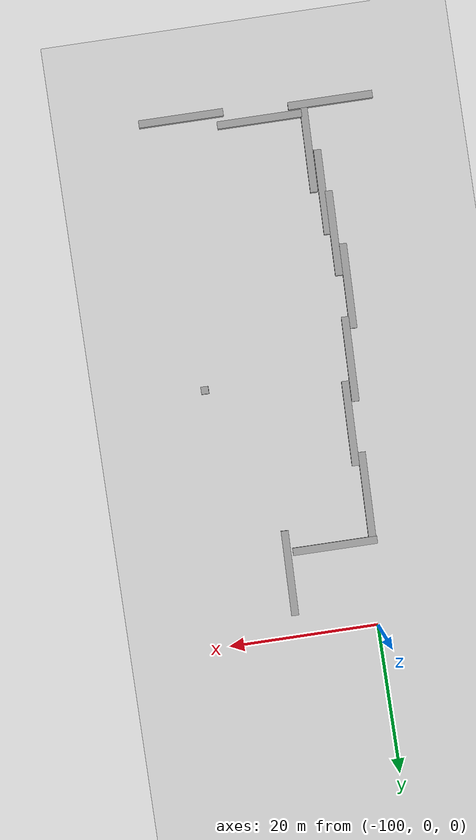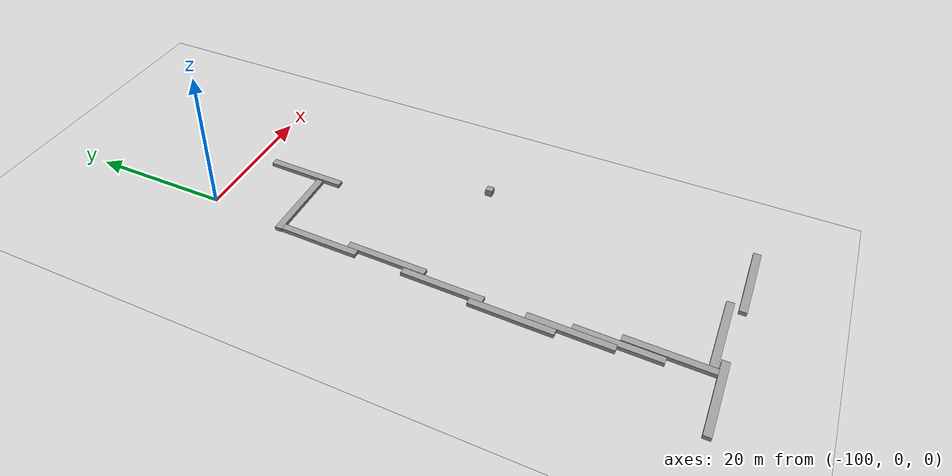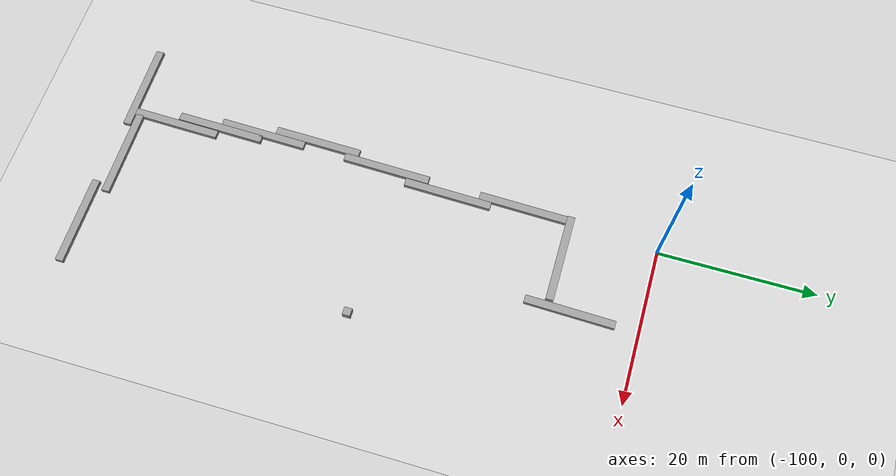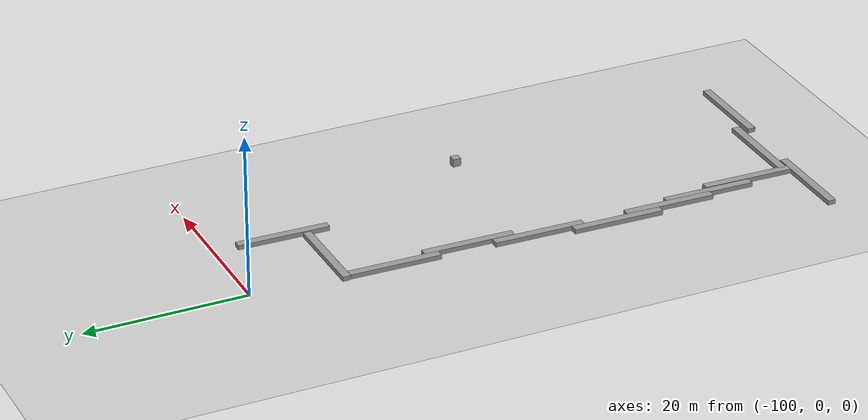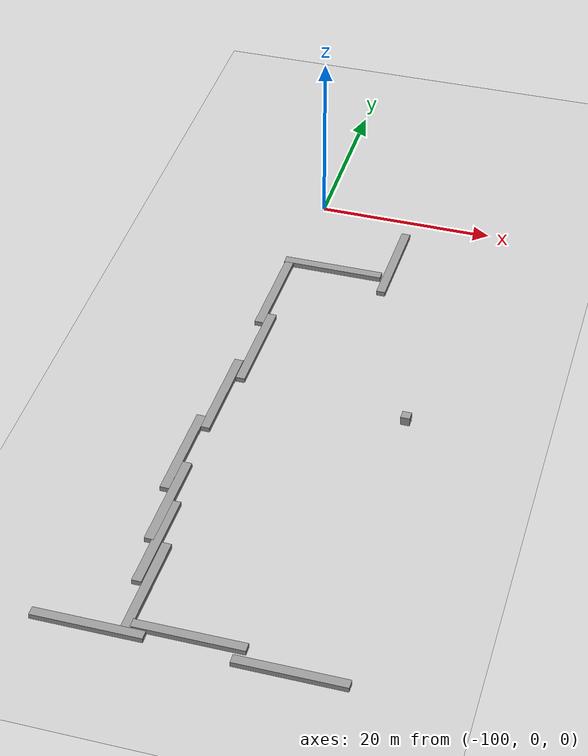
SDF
<sdf version="1.6">
 <world name="default">
  <model name="ground_plane">
   <static>1</static>
   <link name="link">
    <collision name="collision">
     <geometry><plane><normal>0 0 1</normal><size>100 100</size></plane></geometry>
     <surface><friction><ode><mu>100</mu><mu2>50</mu2></ode></friction></surface>
    </collision>
    <visual name="visual">
     <cast_shadows>0</cast_shadows>
     <geometry><plane><normal>0 0 1</normal><size>100 100</size></plane></geometry>
     <material>
      <script><uri>file://media/materials/scripts/gazebo.material</uri><name>Gazebo/Grey</name></script>
     </material>
    </visual>
   </link>
  </model>
  <model name="unit_box_0_clone_14_clone_0_clone_11">
   <pose>-81.7303 -34.3592 0.51 0 0 -0.008529</pose>
   <link name="link">
    <inertial>
     <mass>1</mass>
     <inertia>
      <ixx>0.166667</ixx>
      <ixy>0</ixy>
      <ixz>0</ixz>
      <iyy>0.166667</iyy>
      <iyz>0</iyz>
      <izz>0.166667</izz>
     </inertia>
    </inertial>
    <collision name="collision"><geometry><box><size>1 1 1</size></box></geometry></collision>
    <visual name="visual">
     <geometry><box><size>1 1 1</size></box></geometry>
     <material>
      <script><name>Gazebo/Grey</name><uri>file://media/materials/scripts/gazebo.material</uri></script>
     </material>
    </visual>
   </link>
  </model>
  <model name="unit_box_0_static">
   <link name="link">
    <inertial>
     <mass>11.3696</mass>
     <inertia><ixx>1.89495</ixx><ixy>0</ixy><ixz>0</ixz><iyy>123.426</iyy><iyz>0</iyz><izz>123.426</izz></inertia>
    </inertial>
    <kinematic>1</kinematic>
    <visual name="visual">
     <geometry><box><size>11.3696 1 1</size></box></geometry>
     <material>
      <script><name>Gazebo/Grey</name><uri>file://media/materials/scripts/gazebo.material</uri></script>
      <ambient>0.3 0.3 0.3 1</ambient>
      <diffuse>0.7 0.7 0.7 1</diffuse>
      <specular>0.01 0.01 0.01 1</specular>
      <emissive>0 0 0 1</emissive>
     </material>
    </visual>
    <collision name="collision">
     <geometry><box><size>11.3696 1 1</size></box></geometry>
     <surface>
      <friction>
       <ode><mu>1</mu><mu2>1</mu2><fdir1>0 0 0</fdir1><slip1>0</slip1><slip2>0</slip2></ode>
       <torsional>
        <coefficient>1</coefficient>
        <patch_radius>0</patch_radius>
        <surface_radius>0</surface_radius>
        <use_patch_radius>1</use_patch_radius>
        <ode><slip>0</slip></ode>
       </torsional>
      </friction>
      <bounce><restitution_coefficient>0</restitution_coefficient><threshold>1e+06</threshold></bounce>
      <contact>
       <collide_without_contact>0</collide_without_contact>
       <collide_without_contact_bitmask>1</collide_without_contact_bitmask>
       <collide_bitmask>1</collide_bitmask>
       <ode>
        <soft_cfm>0</soft_cfm>
        <soft_erp>0.2</soft_erp>
        <kp>1e+13</kp>
        <kd>1</kd>
        <max_vel>0.01</max_vel>
        <min_depth>0</min_depth>
       </ode>
       <bullet>
        <split_impulse>1</split_impulse>
        <split_impulse_penetration_threshold>-0.01</split_impulse_penetration_threshold>
        <soft_cfm>0</soft_cfm>
        <soft_erp>0.2</soft_erp>
        <kp>1e+13</kp>
        <kd>1</kd>
       </bullet>
      </contact>
     </surface>
    </collision>
   </link>
   <static>1</static>
   <pose>-83.8691 -70.7361 0 0 -0 0</pose>
  </model>
  <model name="unit_box_0_static_clone_29">
   <link name="link">
    <inertial>
     <mass>11.3696</mass>
     <inertia><ixx>1.89495</ixx><ixy>0</ixy><ixz>0</ixz><iyy>123.426</iyy><iyz>0</iyz><izz>123.426</izz></inertia>
    </inertial>
    <kinematic>1</kinematic>
    <visual name="visual">
     <geometry><box><size>11.3696 1 1</size></box></geometry>
     <material>
      <script><name>Gazebo/Grey</name><uri>file://media/materials/scripts/gazebo.material</uri></script>
      <ambient>0.3 0.3 0.3 1</ambient>
      <diffuse>0.7 0.7 0.7 1</diffuse>
      <specular>0.01 0.01 0.01 1</specular>
      <emissive>0 0 0 1</emissive>
     </material>
    </visual>
    <collision name="collision">
     <geometry><box><size>11.3696 1 1</size></box></geometry>
     <surface>
      <friction>
       <ode><mu>1</mu><mu2>1</mu2><fdir1>0 0 0</fdir1><slip1>0</slip1><slip2>0</slip2></ode>
       <torsional>
        <coefficient>1</coefficient>
        <patch_radius>0</patch_radius>
        <surface_radius>0</surface_radius>
        <use_patch_radius>1</use_patch_radius>
        <ode><slip>0</slip></ode>
       </torsional>
      </friction>
      <bounce><restitution_coefficient>0</restitution_coefficient><threshold>1e+06</threshold></bounce>
      <contact>
       <collide_without_contact>0</collide_without_contact>
       <collide_without_contact_bitmask>1</collide_without_contact_bitmask>
       <collide_bitmask>1</collide_bitmask>
       <ode>
        <soft_cfm>0</soft_cfm>
        <soft_erp>0.2</soft_erp>
        <kp>1e+13</kp>
        <kd>1</kd>
        <max_vel>0.01</max_vel>
        <min_depth>0</min_depth>
       </ode>
       <bullet>
        <split_impulse>1</split_impulse>
        <split_impulse_penetration_threshold>-0.01</split_impulse_penetration_threshold>
        <soft_cfm>0</soft_cfm>
        <soft_erp>0.2</soft_erp>
        <kp>1e+13</kp>
        <kd>1</kd>
       </bullet>
      </contact>
     </surface>
    </collision>
   </link>
   <static>1</static>
   <pose>-95.8668 -11.3355 0 0 -0 0</pose>
  </model>
  <model name="unit_box_0_static_clone_33">
   <link name="link">
    <inertial>
     <mass>11.3696</mass>
     <inertia><ixx>1.89495</ixx><ixy>0</ixy><ixz>0</ixz><iyy>123.426</iyy><iyz>0</iyz><izz>123.426</izz></inertia>
    </inertial>
    <kinematic>1</kinematic>
    <visual name="visual">
     <geometry><box><size>11.3696 1 1</size></box></geometry>
     <material>
      <script><name>Gazebo/Grey</name><uri>file://media/materials/scripts/gazebo.material</uri></script>
      <ambient>0.3 0.3 0.3 1</ambient>
      <diffuse>0.7 0.7 0.7 1</diffuse>
      <specular>0.01 0.01 0.01 1</specular>
      <emissive>0 0 0 1</emissive>
     </material>
    </visual>
    <collision name="collision">
     <geometry><box><size>11.3696 1 1</size></box></geometry>
     <surface>
      <friction>
       <ode><mu>1</mu><mu2>1</mu2><fdir1>0 0 0</fdir1><slip1>0</slip1><slip2>0</slip2></ode>
       <torsional>
        <coefficient>1</coefficient>
        <patch_radius>0</patch_radius>
        <surface_radius>0</surface_radius>
        <use_patch_radius>1</use_patch_radius>
        <ode><slip>0</slip></ode>
       </torsional>
      </friction>
      <bounce><restitution_coefficient>0</restitution_coefficient><threshold>1e+06</threshold></bounce>
      <contact>
       <collide_without_contact>0</collide_without_contact>
       <collide_without_contact_bitmask>1</collide_without_contact_bitmask>
       <collide_bitmask>1</collide_bitmask>
       <ode>
        <soft_cfm>0</soft_cfm>
        <soft_erp>0.2</soft_erp>
        <kp>1e+13</kp>
        <kd>1</kd>
        <max_vel>0.01</max_vel>
        <min_depth>0</min_depth>
       </ode>
       <bullet>
        <split_impulse>1</split_impulse>
        <split_impulse_penetration_threshold>-0.01</split_impulse_penetration_threshold>
        <soft_cfm>0</soft_cfm>
        <soft_erp>0.2</soft_erp>
        <kp>1e+13</kp>
        <kd>1</kd>
       </bullet>
      </contact>
     </surface>
    </collision>
   </link>
   <static>1</static>
   <pose>-94.1893 -69.076 0 0 -0 0</pose>
  </model>
  <model name="unit_box_0_static_clone_34">
   <link name="link">
    <inertial>
     <mass>11.3696</mass>
     <inertia><ixx>1.89495</ixx><ixy>0</ixy><ixz>0</ixz><iyy>123.426</iyy><iyz>0</iyz><izz>123.426</izz></inertia>
    </inertial>
    <kinematic>1</kinematic>
    <visual name="visual">
     <geometry><box><size>11.3696 1 1</size></box></geometry>
     <material>
      <script><name>Gazebo/Grey</name><uri>file://media/materials/scripts/gazebo.material</uri></script>
      <ambient>0.3 0.3 0.3 1</ambient>
      <diffuse>0.7 0.7 0.7 1</diffuse>
      <specular>0.01 0.01 0.01 1</specular>
      <emissive>0 0 0 1</emissive>
     </material>
    </visual>
    <collision name="collision">
     <geometry><box><size>11.3696 1 1</size></box></geometry>
     <surface>
      <friction>
       <ode><mu>1</mu><mu2>1</mu2><fdir1>0 0 0</fdir1><slip1>0</slip1><slip2>0</slip2></ode>
       <torsional>
        <coefficient>1</coefficient>
        <patch_radius>0</patch_radius>
        <surface_radius>0</surface_radius>
        <use_patch_radius>1</use_patch_radius>
        <ode><slip>0</slip></ode>
       </torsional>
      </friction>
      <bounce><restitution_coefficient>0</restitution_coefficient><threshold>1e+06</threshold></bounce>
      <contact>
       <collide_without_contact>0</collide_without_contact>
       <collide_without_contact_bitmask>1</collide_without_contact_bitmask>
       <collide_bitmask>1</collide_bitmask>
       <ode>
        <soft_cfm>0</soft_cfm>
        <soft_erp>0.2</soft_erp>
        <kp>1e+13</kp>
        <kd>1</kd>
        <max_vel>0.01</max_vel>
        <min_depth>0</min_depth>
       </ode>
       <bullet>
        <split_impulse>1</split_impulse>
        <split_impulse_penetration_threshold>-0.01</split_impulse_penetration_threshold>
        <soft_cfm>0</soft_cfm>
        <soft_erp>0.2</soft_erp>
        <kp>1e+13</kp>
        <kd>1</kd>
       </bullet>
      </contact>
     </surface>
    </collision>
   </link>
   <static>1</static>
   <pose>-103.896 -70.2421 0 0 -0 0</pose>
  </model>
  <model name="unit_box_0_static_clone_35">
   <link name="link">
    <inertial>
     <mass>11.3696</mass>
     <inertia><ixx>1.89495</ixx><ixy>0</ixy><ixz>0</ixz><iyy>123.426</iyy><iyz>0</iyz><izz>123.426</izz></inertia>
    </inertial>
    <kinematic>1</kinematic>
    <visual name="visual">
     <geometry><box><size>11.3696 1 1</size></box></geometry>
     <material>
      <script><name>Gazebo/Grey</name><uri>file://media/materials/scripts/gazebo.material</uri></script>
      <ambient>0.3 0.3 0.3 1</ambient>
      <diffuse>0.7 0.7 0.7 1</diffuse>
      <specular>0.01 0.01 0.01 1</specular>
      <emissive>0 0 0 1</emissive>
     </material>
    </visual>
    <collision name="collision">
     <geometry><box><size>11.3696 1 1</size></box></geometry>
     <surface>
      <friction>
       <ode><mu>1</mu><mu2>1</mu2><fdir1>0 0 0</fdir1><slip1>0</slip1><slip2>0</slip2></ode>
       <torsional>
        <coefficient>1</coefficient>
        <patch_radius>0</patch_radius>
        <surface_radius>0</surface_radius>
        <use_patch_radius>1</use_patch_radius>
        <ode><slip>0</slip></ode>
       </torsional>
      </friction>
      <bounce><restitution_coefficient>0</restitution_coefficient><threshold>1e+06</threshold></bounce>
      <contact>
       <collide_without_contact>0</collide_without_contact>
       <collide_without_contact_bitmask>1</collide_without_contact_bitmask>
       <collide_bitmask>1</collide_bitmask>
       <ode>
        <soft_cfm>0</soft_cfm>
        <soft_erp>0.2</soft_erp>
        <kp>1e+13</kp>
        <kd>1</kd>
        <max_vel>0.01</max_vel>
        <min_depth>0</min_depth>
       </ode>
       <bullet>
        <split_impulse>1</split_impulse>
        <split_impulse_penetration_threshold>-0.01</split_impulse_penetration_threshold>
        <soft_cfm>0</soft_cfm>
        <soft_erp>0.2</soft_erp>
        <kp>1e+13</kp>
        <kd>1</kd>
       </bullet>
      </contact>
     </surface>
    </collision>
   </link>
   <static>1</static>
   <pose>-101.072 -17.5094 0 0 0 -1.5917</pose>
  </model>
  <model name="unit_box_0_static_clone_35_clone">
   <link name="link">
    <inertial>
     <mass>11.3696</mass>
     <inertia><ixx>1.89495</ixx><ixy>0</ixy><ixz>0</ixz><iyy>123.426</iyy><iyz>0</iyz><izz>123.426</izz></inertia>
    </inertial>
    <kinematic>1</kinematic>
    <visual name="visual">
     <geometry><box><size>11.3696 1 1</size></box></geometry>
     <material>
      <script><name>Gazebo/Grey</name><uri>file://media/materials/scripts/gazebo.material</uri></script>
      <ambient>0.3 0.3 0.3 1</ambient>
      <diffuse>0.7 0.7 0.7 1</diffuse>
      <specular>0.01 0.01 0.01 1</specular>
      <emissive>0 0 0 1</emissive>
     </material>
    </visual>
    <collision name="collision">
     <geometry><box><size>11.3696 1 1</size></box></geometry>
     <surface>
      <friction>
       <ode><mu>1</mu><mu2>1</mu2><fdir1>0 0 0</fdir1><slip1>0</slip1><slip2>0</slip2></ode>
       <torsional>
        <coefficient>1</coefficient>
        <patch_radius>0</patch_radius>
        <surface_radius>0</surface_radius>
        <use_patch_radius>1</use_patch_radius>
        <ode><slip>0</slip></ode>
       </torsional>
      </friction>
      <bounce><restitution_coefficient>0</restitution_coefficient><threshold>1e+06</threshold></bounce>
      <contact>
       <collide_without_contact>0</collide_without_contact>
       <collide_without_contact_bitmask>1</collide_without_contact_bitmask>
       <collide_bitmask>1</collide_bitmask>
       <ode>
        <soft_cfm>0</soft_cfm>
        <soft_erp>0.2</soft_erp>
        <kp>1e+13</kp>
        <kd>1</kd>
        <max_vel>0.01</max_vel>
        <min_depth>0</min_depth>
       </ode>
       <bullet>
        <split_impulse>1</split_impulse>
        <split_impulse_penetration_threshold>-0.01</split_impulse_penetration_threshold>
        <soft_cfm>0</soft_cfm>
        <soft_erp>0.2</soft_erp>
        <kp>1e+13</kp>
        <kd>1</kd>
       </bullet>
      </contact>
     </surface>
    </collision>
   </link>
   <static>1</static>
   <pose>-100.283 -27.1807 0 0 0 -1.5917</pose>
  </model>
  <model name="unit_box_0_static_clone_35_clone_0">
   <link name="link">
    <inertial>
     <mass>11.3696</mass>
     <inertia><ixx>1.89495</ixx><ixy>0</ixy><ixz>0</ixz><iyy>123.426</iyy><iyz>0</iyz><izz>123.426</izz></inertia>
    </inertial>
    <kinematic>1</kinematic>
    <visual name="visual">
     <geometry><box><size>11.3696 1 1</size></box></geometry>
     <material>
      <script><name>Gazebo/Grey</name><uri>file://media/materials/scripts/gazebo.material</uri></script>
      <ambient>0.3 0.3 0.3 1</ambient>
      <diffuse>0.7 0.7 0.7 1</diffuse>
      <specular>0.01 0.01 0.01 1</specular>
      <emissive>0 0 0 1</emissive>
     </material>
    </visual>
    <collision name="collision">
     <geometry><box><size>11.3696 1 1</size></box></geometry>
     <surface>
      <friction>
       <ode><mu>1</mu><mu2>1</mu2><fdir1>0 0 0</fdir1><slip1>0</slip1><slip2>0</slip2></ode>
       <torsional>
        <coefficient>1</coefficient>
        <patch_radius>0</patch_radius>
        <surface_radius>0</surface_radius>
        <use_patch_radius>1</use_patch_radius>
        <ode><slip>0</slip></ode>
       </torsional>
      </friction>
      <bounce><restitution_coefficient>0</restitution_coefficient><threshold>1e+06</threshold></bounce>
      <contact>
       <collide_without_contact>0</collide_without_contact>
       <collide_without_contact_bitmask>1</collide_without_contact_bitmask>
       <collide_bitmask>1</collide_bitmask>
       <ode>
        <soft_cfm>0</soft_cfm>
        <soft_erp>0.2</soft_erp>
        <kp>1e+13</kp>
        <kd>1</kd>
        <max_vel>0.01</max_vel>
        <min_depth>0</min_depth>
       </ode>
       <bullet>
        <split_impulse>1</split_impulse>
        <split_impulse_penetration_threshold>-0.01</split_impulse_penetration_threshold>
        <soft_cfm>0</soft_cfm>
        <soft_erp>0.2</soft_erp>
        <kp>1e+13</kp>
        <kd>1</kd>
       </bullet>
      </contact>
     </surface>
    </collision>
   </link>
   <static>1</static>
   <pose>-101.51 -35.6827 0 0 0 -1.5917</pose>
  </model>
  <model name="unit_box_0_static_clone_35_clone_1">
   <link name="link">
    <inertial>
     <mass>11.3696</mass>
     <inertia><ixx>1.89495</ixx><ixy>0</ixy><ixz>0</ixz><iyy>123.426</iyy><iyz>0</iyz><izz>123.426</izz></inertia>
    </inertial>
    <kinematic>1</kinematic>
    <visual name="visual">
     <geometry><box><size>11.3696 1 1</size></box></geometry>
     <material>
      <script><name>Gazebo/Grey</name><uri>file://media/materials/scripts/gazebo.material</uri></script>
      <ambient>0.3 0.3 0.3 1</ambient>
      <diffuse>0.7 0.7 0.7 1</diffuse>
      <specular>0.01 0.01 0.01 1</specular>
      <emissive>0 0 0 1</emissive>
     </material>
    </visual>
    <collision name="collision">
     <geometry><box><size>11.3696 1 1</size></box></geometry>
     <surface>
      <friction>
       <ode><mu>1</mu><mu2>1</mu2><fdir1>0 0 0</fdir1><slip1>0</slip1><slip2>0</slip2></ode>
       <torsional>
        <coefficient>1</coefficient>
        <patch_radius>0</patch_radius>
        <surface_radius>0</surface_radius>
        <use_patch_radius>1</use_patch_radius>
        <ode><slip>0</slip></ode>
       </torsional>
      </friction>
      <bounce><restitution_coefficient>0</restitution_coefficient><threshold>1e+06</threshold></bounce>
      <contact>
       <collide_without_contact>0</collide_without_contact>
       <collide_without_contact_bitmask>1</collide_without_contact_bitmask>
       <collide_bitmask>1</collide_bitmask>
       <ode>
        <soft_cfm>0</soft_cfm>
        <soft_erp>0.2</soft_erp>
        <kp>1e+13</kp>
        <kd>1</kd>
        <max_vel>0.01</max_vel>
        <min_depth>0</min_depth>
       </ode>
       <bullet>
        <split_impulse>1</split_impulse>
        <split_impulse_penetration_threshold>-0.01</split_impulse_penetration_threshold>
        <soft_cfm>0</soft_cfm>
        <soft_erp>0.2</soft_erp>
        <kp>1e+13</kp>
        <kd>1</kd>
       </bullet>
      </contact>
     </surface>
    </collision>
   </link>
   <static>1</static>
   <pose>-102.657 -45.3782 0 0 0 -1.5917</pose>
  </model>
  <model name="unit_box_0_static_clone_35_clone_2">
   <link name="link">
    <inertial>
     <mass>11.3696</mass>
     <inertia><ixx>1.89495</ixx><ixy>0</ixy><ixz>0</ixz><iyy>123.426</iyy><iyz>0</iyz><izz>123.426</izz></inertia>
    </inertial>
    <kinematic>1</kinematic>
    <visual name="visual">
     <geometry><box><size>11.3696 1 1</size></box></geometry>
     <material>
      <script><name>Gazebo/Grey</name><uri>file://media/materials/scripts/gazebo.material</uri></script>
      <ambient>0.3 0.3 0.3 1</ambient>
      <diffuse>0.7 0.7 0.7 1</diffuse>
      <specular>0.01 0.01 0.01 1</specular>
      <emissive>0 0 0 1</emissive>
     </material>
    </visual>
    <collision name="collision">
     <geometry><box><size>11.3696 1 1</size></box></geometry>
     <surface>
      <friction>
       <ode><mu>1</mu><mu2>1</mu2><fdir1>0 0 0</fdir1><slip1>0</slip1><slip2>0</slip2></ode>
       <torsional>
        <coefficient>1</coefficient>
        <patch_radius>0</patch_radius>
        <surface_radius>0</surface_radius>
        <use_patch_radius>1</use_patch_radius>
        <ode><slip>0</slip></ode>
       </torsional>
      </friction>
      <bounce><restitution_coefficient>0</restitution_coefficient><threshold>1e+06</threshold></bounce>
      <contact>
       <collide_without_contact>0</collide_without_contact>
       <collide_without_contact_bitmask>1</collide_without_contact_bitmask>
       <collide_bitmask>1</collide_bitmask>
       <ode>
        <soft_cfm>0</soft_cfm>
        <soft_erp>0.2</soft_erp>
        <kp>1e+13</kp>
        <kd>1</kd>
        <max_vel>0.01</max_vel>
        <min_depth>0</min_depth>
       </ode>
       <bullet>
        <split_impulse>1</split_impulse>
        <split_impulse_penetration_threshold>-0.01</split_impulse_penetration_threshold>
        <soft_cfm>0</soft_cfm>
        <soft_erp>0.2</soft_erp>
        <kp>1e+13</kp>
        <kd>1</kd>
       </bullet>
      </contact>
     </surface>
    </collision>
   </link>
   <static>1</static>
   <pose>-101.805 -52.6115 0 0 0 -1.5917</pose>
  </model>
  <model name="unit_box_0_static_clone_35_clone_3">
   <link name="link">
    <inertial>
     <mass>11.3696</mass>
     <inertia><ixx>1.89495</ixx><ixy>0</ixy><ixz>0</ixz><iyy>123.426</iyy><iyz>0</iyz><izz>123.426</izz></inertia>
    </inertial>
    <kinematic>1</kinematic>
    <visual name="visual">
     <geometry><box><size>11.3696 1 1</size></box></geometry>
     <material>
      <script><name>Gazebo/Grey</name><uri>file://media/materials/scripts/gazebo.material</uri></script>
      <ambient>0.3 0.3 0.3 1</ambient>
      <diffuse>0.7 0.7 0.7 1</diffuse>
      <specular>0.01 0.01 0.01 1</specular>
      <emissive>0 0 0 1</emissive>
     </material>
    </visual>
    <collision name="collision">
     <geometry><box><size>11.3696 1 1</size></box></geometry>
     <surface>
      <friction>
       <ode><mu>1</mu><mu2>1</mu2><fdir1>0 0 0</fdir1><slip1>0</slip1><slip2>0</slip2></ode>
       <torsional>
        <coefficient>1</coefficient>
        <patch_radius>0</patch_radius>
        <surface_radius>0</surface_radius>
        <use_patch_radius>1</use_patch_radius>
        <ode><slip>0</slip></ode>
       </torsional>
      </friction>
      <bounce><restitution_coefficient>0</restitution_coefficient><threshold>1e+06</threshold></bounce>
      <contact>
       <collide_without_contact>0</collide_without_contact>
       <collide_without_contact_bitmask>1</collide_without_contact_bitmask>
       <collide_bitmask>1</collide_bitmask>
       <ode>
        <soft_cfm>0</soft_cfm>
        <soft_erp>0.2</soft_erp>
        <kp>1e+13</kp>
        <kd>1</kd>
        <max_vel>0.01</max_vel>
        <min_depth>0</min_depth>
       </ode>
       <bullet>
        <split_impulse>1</split_impulse>
        <split_impulse_penetration_threshold>-0.01</split_impulse_penetration_threshold>
        <soft_cfm>0</soft_cfm>
        <soft_erp>0.2</soft_erp>
        <kp>1e+13</kp>
        <kd>1</kd>
       </bullet>
      </contact>
     </surface>
    </collision>
   </link>
   <static>1</static>
   <pose>-101.105 -58.2638 0 0 0 -1.5917</pose>
  </model>
  <model name="unit_box_0_static_clone_35_clone_4">
   <link name="link">
    <inertial>
     <mass>11.3696</mass>
     <inertia><ixx>1.89495</ixx><ixy>0</ixy><ixz>0</ixz><iyy>123.426</iyy><iyz>0</iyz><izz>123.426</izz></inertia>
    </inertial>
    <kinematic>1</kinematic>
    <visual name="visual">
     <geometry><box><size>11.3696 1 1</size></box></geometry>
     <material>
      <script><name>Gazebo/Grey</name><uri>file://media/materials/scripts/gazebo.material</uri></script>
      <ambient>0.3 0.3 0.3 1</ambient>
      <diffuse>0.7 0.7 0.7 1</diffuse>
      <specular>0.01 0.01 0.01 1</specular>
      <emissive>0 0 0 1</emissive>
     </material>
    </visual>
    <collision name="collision">
     <geometry><box><size>11.3696 1 1</size></box></geometry>
     <surface>
      <friction>
       <ode><mu>1</mu><mu2>1</mu2><fdir1>0 0 0</fdir1><slip1>0</slip1><slip2>0</slip2></ode>
       <torsional>
        <coefficient>1</coefficient>
        <patch_radius>0</patch_radius>
        <surface_radius>0</surface_radius>
        <use_patch_radius>1</use_patch_radius>
        <ode><slip>0</slip></ode>
       </torsional>
      </friction>
      <bounce><restitution_coefficient>0</restitution_coefficient><threshold>1e+06</threshold></bounce>
      <contact>
       <collide_without_contact>0</collide_without_contact>
       <collide_without_contact_bitmask>1</collide_without_contact_bitmask>
       <collide_bitmask>1</collide_bitmask>
       <ode>
        <soft_cfm>0</soft_cfm>
        <soft_erp>0.2</soft_erp>
        <kp>1e+13</kp>
        <kd>1</kd>
        <max_vel>0.01</max_vel>
        <min_depth>0</min_depth>
       </ode>
       <bullet>
        <split_impulse>1</split_impulse>
        <split_impulse_penetration_threshold>-0.01</split_impulse_penetration_threshold>
        <soft_cfm>0</soft_cfm>
        <soft_erp>0.2</soft_erp>
        <kp>1e+13</kp>
        <kd>1</kd>
       </bullet>
      </contact>
     </surface>
    </collision>
   </link>
   <static>1</static>
   <pose>-100.121 -64.0755 0 0 0 -1.5917</pose>
  </model>
  <model name="unit_box_0_static_clone_35_clone_8">
   <link name="link">
    <inertial>
     <mass>11.3696</mass>
     <inertia><ixx>1.89495</ixx><ixy>0</ixy><ixz>0</ixz><iyy>123.426</iyy><iyz>0</iyz><izz>123.426</izz></inertia>
    </inertial>
    <kinematic>1</kinematic>
    <visual name="visual">
     <geometry><box><size>11.3696 1 1</size></box></geometry>
     <material>
      <script><name>Gazebo/Grey</name><uri>file://media/materials/scripts/gazebo.material</uri></script>
      <ambient>0.3 0.3 0.3 1</ambient>
      <diffuse>0.7 0.7 0.7 1</diffuse>
      <specular>0.01 0.01 0.01 1</specular>
      <emissive>0 0 0 1</emissive>
     </material>
    </visual>
    <collision name="collision">
     <geometry><box><size>11.3696 1 1</size></box></geometry>
     <surface>
      <friction>
       <ode><mu>1</mu><mu2>1</mu2><fdir1>0 0 0</fdir1><slip1>0</slip1><slip2>0</slip2></ode>
       <torsional>
        <coefficient>1</coefficient>
        <patch_radius>0</patch_radius>
        <surface_radius>0</surface_radius>
        <use_patch_radius>1</use_patch_radius>
        <ode><slip>0</slip></ode>
       </torsional>
      </friction>
      <bounce><restitution_coefficient>0</restitution_coefficient><threshold>1e+06</threshold></bounce>
      <contact>
       <collide_without_contact>0</collide_without_contact>
       <collide_without_contact_bitmask>1</collide_without_contact_bitmask>
       <collide_bitmask>1</collide_bitmask>
       <ode>
        <soft_cfm>0</soft_cfm>
        <soft_erp>0.2</soft_erp>
        <kp>1e+13</kp>
        <kd>1</kd>
        <max_vel>0.01</max_vel>
        <min_depth>0</min_depth>
       </ode>
       <bullet>
        <split_impulse>1</split_impulse>
        <split_impulse_penetration_threshold>-0.01</split_impulse_penetration_threshold>
        <soft_cfm>0</soft_cfm>
        <soft_erp>0.2</soft_erp>
        <kp>1e+13</kp>
        <kd>1</kd>
       </bullet>
      </contact>
     </surface>
    </collision>
   </link>
   <static>1</static>
   <pose>-89.3722 -8.60289 0 0 0 -1.5917</pose>
  </model>
 </world>
</sdf>
